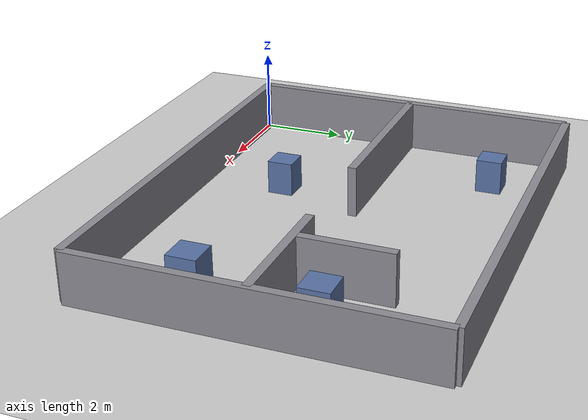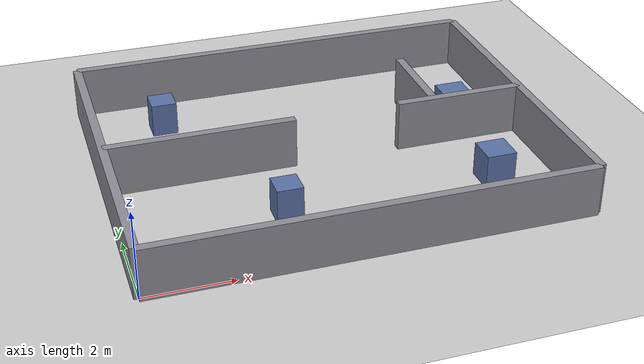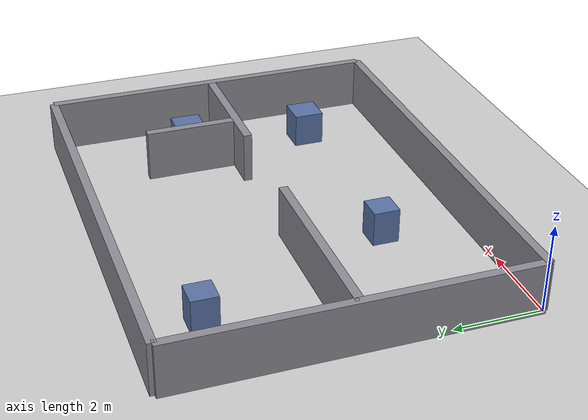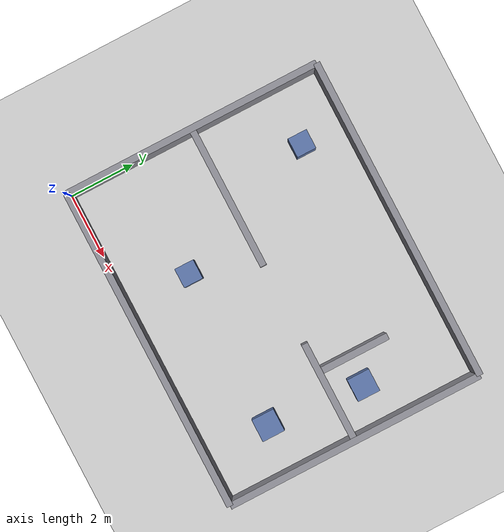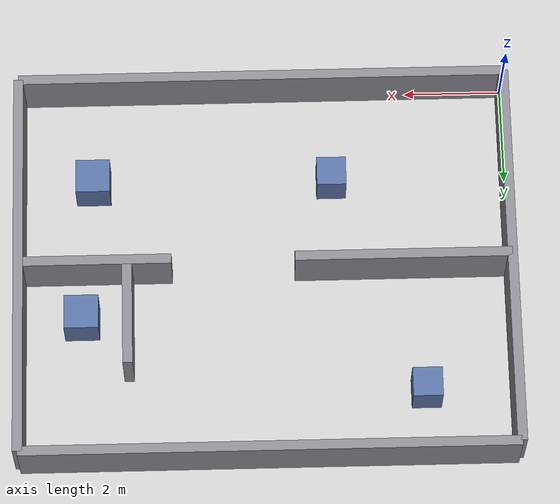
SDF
<?xml version="1.0"?>
<sdf version="1.7">
  <world name="amr_office">
    <physics type="dart">
      <max_step_size>0.01</max_step_size>
      <real_time_factor>1.0</real_time_factor>
    </physics>
    <gravity>0 0 -9.81</gravity>

    <scene>
      <ambient>0.4 0.4 0.4 1.0</ambient>
      <background>0.7 0.7 0.7 1.0</background>
      <grid>true</grid>
    </scene>

    <spherical_coordinates>
      <surface_model>EARTH_WGS84</surface_model>
      <latitude_deg>0.0</latitude_deg>
      <longitude_deg>0.0</longitude_deg>
      <elevation>0.0</elevation>
      <heading_deg>0</heading_deg>
    </spherical_coordinates>

    <model name="ground_plane">
      <static>true</static>
      <link name="ground_plane_link">
        <collision name="collision">
          <geometry>
            <plane>
              <normal>0 0 1</normal>
            </plane>
          </geometry>
          <surface>
            <friction>
              <ode>
                <mu>1.0</mu>
                <mu2>1.0</mu2>
              </ode>
            </friction>
          </surface>
        </collision>
        <visual name="visual">
          <geometry>
            <plane>
              <normal>0 0 1</normal>
              <size>100 100</size>
            </plane>
          </geometry>
          <material>
            <ambient>0.8 0.8 0.8 1.0</ambient>
            <diffuse>0.8 0.8 0.8 1.0</diffuse>
          </material>
        </visual>
      </link>
    </model>

    <model name="sun">
      <static>true</static>
      <link name="sun_link">
        <light name="sun_light" type="directional">
          <cast_shadows>true</cast_shadows>
          <pose>0 0 10 0 0 0</pose>
          <diffuse>0.8 0.8 0.8 1</diffuse>
          <specular>0.2 0.2 0.2 1</specular>
          <attenuation>
            <range>1000</range>
            <constant>0.9</constant>
            <linear>0.01</linear>
            <quadratic>0.001</quadratic>
          </attenuation>
          <direction>-0.5 0.1 -0.9</direction>
        </light>
      </link>
    </model>

    <model name="wall_00">
      <static>true</static>
      <pose>5.000000 0.000000 0.600000 0 0 0</pose>
      <link name="link">
        <collision name="collision">
          <geometry>
            <box>
              <size>10.000000 0.200000 1.200000</size>
            </box>
          </geometry>
        </collision>
        <visual name="visual">
          <geometry>
            <box>
              <size>10.000000 0.200000 1.200000</size>
            </box>
          </geometry>
          <material>
            <ambient>0.55 0.55 0.58 1</ambient>
            <diffuse>0.55 0.55 0.58 1</diffuse>
          </material>
        </visual>
      </link>
    </model>

    <model name="wall_01">
      <static>true</static>
      <pose>5.000000 8.000000 0.600000 0 0 0</pose>
      <link name="link">
        <collision name="collision">
          <geometry>
            <box>
              <size>10.000000 0.200000 1.200000</size>
            </box>
          </geometry>
        </collision>
        <visual name="visual">
          <geometry>
            <box>
              <size>10.000000 0.200000 1.200000</size>
            </box>
          </geometry>
          <material>
            <ambient>0.55 0.55 0.58 1</ambient>
            <diffuse>0.55 0.55 0.58 1</diffuse>
          </material>
        </visual>
      </link>
    </model>

    <model name="wall_02">
      <static>true</static>
      <pose>0.000000 4.000000 0.600000 0 0 0</pose>
      <link name="link">
        <collision name="collision">
          <geometry>
            <box>
              <size>0.200000 8.000000 1.200000</size>
            </box>
          </geometry>
        </collision>
        <visual name="visual">
          <geometry>
            <box>
              <size>0.200000 8.000000 1.200000</size>
            </box>
          </geometry>
          <material>
            <ambient>0.55 0.55 0.58 1</ambient>
            <diffuse>0.55 0.55 0.58 1</diffuse>
          </material>
        </visual>
      </link>
    </model>

    <model name="wall_03">
      <static>true</static>
      <pose>10.000000 4.000000 0.600000 0 0 0</pose>
      <link name="link">
        <collision name="collision">
          <geometry>
            <box>
              <size>0.200000 8.000000 1.200000</size>
            </box>
          </geometry>
        </collision>
        <visual name="visual">
          <geometry>
            <box>
              <size>0.200000 8.000000 1.200000</size>
            </box>
          </geometry>
          <material>
            <ambient>0.55 0.55 0.58 1</ambient>
            <diffuse>0.55 0.55 0.58 1</diffuse>
          </material>
        </visual>
      </link>
    </model>

    <model name="wall_04">
      <static>true</static>
      <pose>2.200000 4.000000 0.600000 0 0 0</pose>
      <link name="link">
        <collision name="collision">
          <geometry>
            <box>
              <size>4.400000 0.200000 1.200000</size>
            </box>
          </geometry>
        </collision>
        <visual name="visual">
          <geometry>
            <box>
              <size>4.400000 0.200000 1.200000</size>
            </box>
          </geometry>
          <material>
            <ambient>0.55 0.55 0.58 1</ambient>
            <diffuse>0.55 0.55 0.58 1</diffuse>
          </material>
        </visual>
      </link>
    </model>

    <model name="wall_05">
      <static>true</static>
      <pose>8.450000 4.000000 0.600000 0 0 0</pose>
      <link name="link">
        <collision name="collision">
          <geometry>
            <box>
              <size>3.100000 0.200000 1.200000</size>
            </box>
          </geometry>
        </collision>
        <visual name="visual">
          <geometry>
            <box>
              <size>3.100000 0.200000 1.200000</size>
            </box>
          </geometry>
          <material>
            <ambient>0.55 0.55 0.58 1</ambient>
            <diffuse>0.55 0.55 0.58 1</diffuse>
          </material>
        </visual>
      </link>
    </model>

    <model name="wall_06">
      <static>true</static>
      <pose>7.800000 5.150000 0.600000 0 0 0</pose>
      <link name="link">
        <collision name="collision">
          <geometry>
            <box>
              <size>0.200000 2.100000 1.200000</size>
            </box>
          </geometry>
        </collision>
        <visual name="visual">
          <geometry>
            <box>
              <size>0.200000 2.100000 1.200000</size>
            </box>
          </geometry>
          <material>
            <ambient>0.55 0.55 0.58 1</ambient>
            <diffuse>0.55 0.55 0.58 1</diffuse>
          </material>
        </visual>
      </link>
    </model>

    <model name="obstacle_00">
      <static>true</static>
      <pose>3.600000 2.000000 0.400000 0 0 0</pose>
      <link name="link">
        <collision name="collision">
          <geometry>
            <box>
              <size>0.600000 0.600000 0.800000</size>
            </box>
          </geometry>
        </collision>
        <visual name="visual">
          <geometry>
            <box>
              <size>0.600000 0.600000 0.800000</size>
            </box>
          </geometry>
          <material>
            <ambient>0.35 0.45 0.65 1</ambient>
            <diffuse>0.35 0.45 0.65 1</diffuse>
          </material>
        </visual>
      </link>
    </model>

    <model name="obstacle_01">
      <static>true</static>
      <pose>8.500000 2.000000 0.400000 0 0 0</pose>
      <link name="link">
        <collision name="collision">
          <geometry>
            <box>
              <size>0.700000 0.700000 0.800000</size>
            </box>
          </geometry>
        </collision>
        <visual name="visual">
          <geometry>
            <box>
              <size>0.700000 0.700000 0.800000</size>
            </box>
          </geometry>
          <material>
            <ambient>0.35 0.45 0.65 1</ambient>
            <diffuse>0.35 0.45 0.65 1</diffuse>
          </material>
        </visual>
      </link>
    </model>

    <model name="obstacle_02">
      <static>true</static>
      <pose>1.800000 6.600000 0.400000 0 0 0</pose>
      <link name="link">
        <collision name="collision">
          <geometry>
            <box>
              <size>0.600000 0.600000 0.800000</size>
            </box>
          </geometry>
        </collision>
        <visual name="visual">
          <geometry>
            <box>
              <size>0.600000 0.600000 0.800000</size>
            </box>
          </geometry>
          <material>
            <ambient>0.35 0.45 0.65 1</ambient>
            <diffuse>0.35 0.45 0.65 1</diffuse>
          </material>
        </visual>
      </link>
    </model>

    <model name="obstacle_03">
      <static>true</static>
      <pose>8.750000 4.950000 0.400000 0 0 0</pose>
      <link name="link">
        <collision name="collision">
          <geometry>
            <box>
              <size>0.700000 0.700000 0.800000</size>
            </box>
          </geometry>
        </collision>
        <visual name="visual">
          <geometry>
            <box>
              <size>0.700000 0.700000 0.800000</size>
            </box>
          </geometry>
          <material>
            <ambient>0.35 0.45 0.65 1</ambient>
            <diffuse>0.35 0.45 0.65 1</diffuse>
          </material>
        </visual>
      </link>
    </model>

    <plugin filename="gz-sim-physics-system" name="gz::sim::systems::Physics">
    </plugin>
    <plugin filename="gz-sim-user-commands-system"
            name="gz::sim::systems::UserCommands">
    </plugin>
    <plugin filename="gz-sim-scene-broadcaster-system"
            name="gz::sim::systems::SceneBroadcaster">
    </plugin>
    <plugin filename="gz-sim-sensors-system" name="gz::sim::systems::Sensors">
    </plugin>
    <plugin filename="gz-sim-imu-system" name="gz::sim::systems::Imu">
    </plugin>
  </world>
</sdf>
